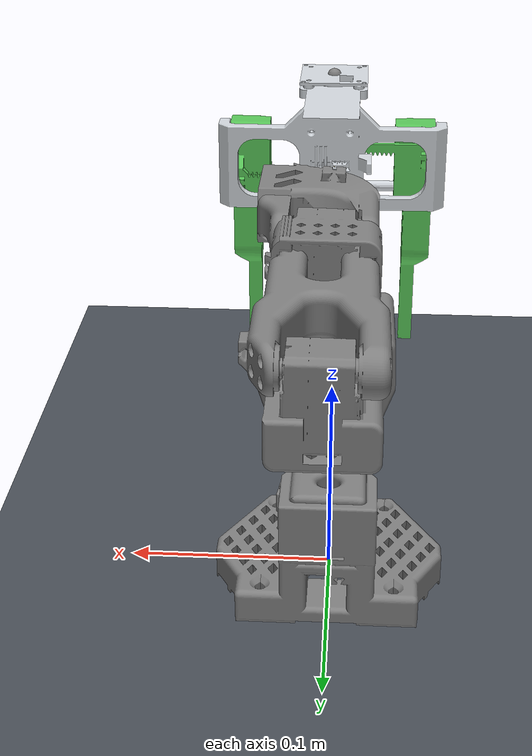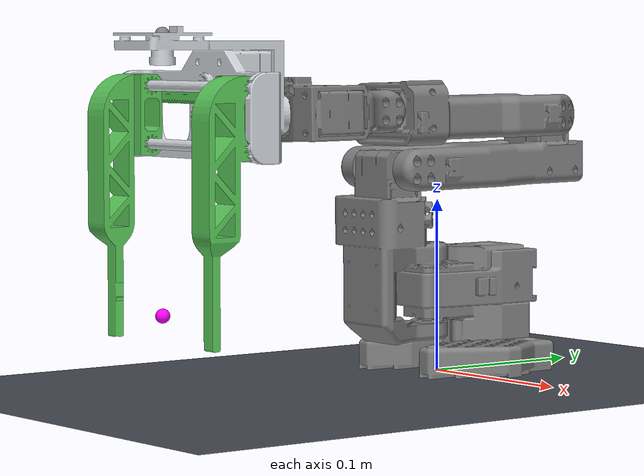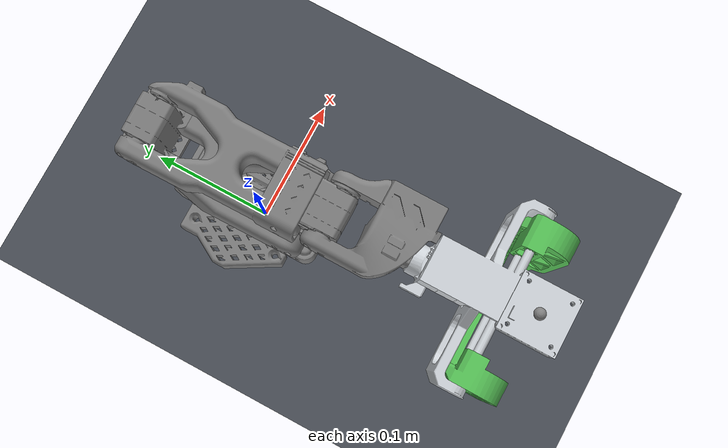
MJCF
<mujoco model="so101_slide_gripper">
  <compiler angle="radian" meshdir="." />
  <option timestep="0.002" integrator="implicitfast" />
  <visual>
    <global offwidth="1600" offheight="1200" />
    <quality shadowsize="4096" />
  </visual>
  <!-- gripper geometry, exported from Fusion -->
  <include file="gripper_assets.xml" />
  <asset>
    <mesh name="base_link" content_type="model/stl" file="meshes/arm/base_link.stl" scale="0.001 0.001 0.001" />
    <mesh name="link1_1" content_type="model/stl" file="meshes/arm/link1_1.stl" scale="0.001 0.001 0.001" />
    <mesh name="link2_1" content_type="model/stl" file="meshes/arm/link2_1.stl" scale="0.001 0.001 0.001" />
    <mesh name="link3_1" content_type="model/stl" file="meshes/arm/link3_1.stl" scale="0.001 0.001 0.001" />
    <mesh name="link4_1" content_type="model/stl" file="meshes/arm/link4_1.stl" scale="0.001 0.001 0.001" />
    <mesh name="link5_1" content_type="model/stl" file="meshes/arm/link5_1.stl" scale="0.001 0.001 0.001" />
    <texture name="grid" type="2d" builtin="checker" rgb1="0.25 0.27 0.30" rgb2="0.32 0.34 0.38" width="512" height="512" />
    <material name="grid" texture="grid" texrepeat="8 8" reflectance="0.1" />
    <texture name="sky" type="skybox" builtin="gradient" rgb1="0.35 0.42 0.52" rgb2="0.05 0.06 0.08" width="256" height="256" />
  </asset>
  <worldbody>
    <light pos="-0.5 -0.3 0.8" dir="0.5 0.3 -0.8" diffuse="0.3 0.3 0.3" />
    <light pos="0.4 -0.5 1.0" dir="-0.4 0.5 -1.0" directional="true" diffuse="0.7 0.7 0.7" />
    <geom name="floor" type="plane" size="1 1 0.01" material="grid" />
    <geom type="mesh" mesh="base_link" />
    <body name="link1_1" pos="-9.9e-05 -0.007243 0.027983">
      <inertial pos="-6.74952e-05 -0.0304904 0.0537666" quat="0.741279 0.0624238 -0.0421672 0.666956" mass="0.241847" diaginertia="0.00020148 0.00019497 9.255e-05" />
      <joint name="base_link_to_link1" pos="0 0 0" axis="0 -0.008727 0.999962" range="-2.0944 2.0944" actuatorfrcrange="-1.5 1.5" damping="0.1" frictionloss="0.05" />
      <geom pos="9.9e-05 0.007243 -0.027983" type="mesh" mesh="link1_1" />
      <body name="link2_1" pos="0.020891 -0.031313 0.091377">
        <inertial pos="-0.0183886 0.0626104 0.00101204" quat="0.487483 0.509946 -0.505248 0.49703" mass="0.986114" diaginertia="0.00163814 0.00133618 0.000430679" />
        <joint name="link1_to_link2" pos="0 0 0" axis="-0.999962 -0.008726 -7.6e-05" range="-3.22886 0.174533" actuatorfrcrange="-1.5 1.5" damping="0.1" frictionloss="0.05" />
        <geom pos="-0.020792 0.038556 -0.11936" quat="1 0 0 0" type="mesh" mesh="link2_1" />
        <body name="link3_1" pos="0.00151 0.112435 0.029417">
          <inertial pos="-0.0177515 -0.0654403 -0.000172961" quat="0.496869 0.499452 -0.493993 0.509548" mass="0.903115" diaginertia="0.0014402 0.00119426 0.000363546" />
          <joint name="link2_to_link3" pos="0 0 0" axis="-0.999924 -0.00865 -0.008802" range="0 3.31613" actuatorfrcrange="-1.5 1.5" damping="0.1" frictionloss="0.05" />
          <geom pos="-0.022302 -0.073879 -0.148777" quat="1 0 0 0" type="mesh" mesh="link3_1" />
          <body name="link4_1" pos="0.00208 -0.134461 0.00412">
            <inertial pos="-0.0143886 -0.0288027 -0.000205619" quat="0.220056 0.668013 -0.224508 0.674485" mass="0.317735" diaginertia="0.000239011 0.000171595 0.000119394" />
            <joint name="link3_to_link4" pos="0 0 0" axis="-0.999848 0.000153 -0.017451" range="-1.65806 1.65806" actuatorfrcrange="-1.5 1.5" damping="0.1" frictionloss="0.05" />
            <geom pos="-0.024382 0.060582 -0.152897" quat="1 0 0 0" type="mesh" mesh="link4_1" />
            <body name="link5_1" pos="-0.01732 -0.060045 -0.000831">
              <inertial pos="0 -0.01 0.005" quat="1 0 0 0" mass="0.08" diaginertia="6e-05 6e-05 4e-05" />
              <joint name="link4_to_link5" pos="0 0 0" axis="-1e-06 0.999961 0.008803" range="-4.27606 1.5708" actuatorfrcrange="-1.5 1.5" damping="0.1" frictionloss="0.05" />
              <body name="sg_mount" pos="-0.0014 -0.0477 -0.0002" quat="0.70710678 0.70710678 0 0">
                <include file="gripper_body.xml" />
              </body>
            </body>
          </body>
        </body>
      </body>
    </body>
  </worldbody>
  <actuator>
    <position name="base_link_to_link1" joint="base_link_to_link1" kp="12" kv="2.0" forcerange="-1.5 1.5" />
    <position name="link1_to_link2" joint="link1_to_link2" kp="18" kv="3.0" forcerange="-1.5 1.5" />
    <position name="link2_to_link3" joint="link2_to_link3" kp="14" kv="2.33" forcerange="-1.5 1.5" />
    <position name="link3_to_link4" joint="link3_to_link4" kp="8" kv="1.33" forcerange="-1.5 1.5" />
    <position name="link4_to_link5" joint="link4_to_link5" kp="6" kv="1.0" forcerange="-1.5 1.5" />
  </actuator>
  <include file="gripper_actuation.xml" />
  <contact>
    <exclude body1="link5_1" body2="slide_gripper_base" />
    <exclude body1="world" body2="link1_1" />
  </contact>
</mujoco>

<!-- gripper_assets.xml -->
<mujocoinclude>
  <asset>
    <mesh name="sg_base"      file="meshes/base.stl"      scale="0.001 0.001 0.001"/>
    <mesh name="sg_jaw_right" file="meshes/jaw_right.stl"  scale="0.001 0.001 0.001"/>
    <mesh name="sg_jaw_left"  file="meshes/jaw_left.stl"   scale="0.001 0.001 0.001"/>
    <mesh name="sg_pinion"    file="meshes/pinion.stl"     scale="0.001 0.001 0.001"/>

    <material name="sg_frame" rgba="0.82 0.84 0.86 1"/>
    <material name="sg_jaw"   rgba="0.35 0.78 0.35 1"/>
    <material name="sg_gear"  rgba="0.90 0.70 0.20 1"/>
    <material name="sg_pad"   rgba="0.90 0.30 0.30 0.35"/>
  </asset>
</mujocoinclude>

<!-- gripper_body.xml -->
<mujocoinclude>
  <body name="slide_gripper_base" pos="0 0 0">
    <geom type="mesh" mesh="sg_base" material="sg_frame" mass="0.20"
          contype="0" conaffinity="0" group="2"/>
    <geom name="sg_base_col" type="box" pos="0 0.012 -0.0023" size="0.064 0.036 0.0498"
          mass="0" group="3" rgba="0.5 0.5 0.5 0.25"/>

    <!-- Drive pinion: 18T, 0.8 module, 7.2 mm pitch radius. Kinematically
         redundant (the racks are coupled directly) but kept so the gear
         visibly turns with the jaws. -->
    <body name="sg_pinion" pos="0 0 0">
      <joint name="sg_pinion_joint" type="hinge" axis="0 0 1" limited="false"
             damping="0.001" armature="1e-4"/>
      <geom type="mesh" mesh="sg_pinion" material="sg_gear" mass="0.008"
            contype="0" conaffinity="0" group="2"/>
    </body>

    <body name="sg_jaw_right" pos="0 0 0">
      <joint name="sg_jaw_right_joint" type="slide" axis="-1 0 0" range="0 0.0355"
             damping="2.0" armature="0.001"/>
      <geom type="mesh" mesh="sg_jaw_right" material="sg_jaw" mass="0.035"
            contype="0" conaffinity="0" group="2"/>
      <geom name="sg_pad_right" type="box" pos="0.046 -0.10719 0.0285"
            size="0.004 0.015 0.0025" mass="0" group="3" material="sg_pad"
            friction="1.5 0.02 0.005" solimp="0.98 0.999 0.001" solref="0.004 1"/>
      <geom name="sg_mid_right" type="box" pos="0.050 -0.05856 0.0285"
            size="0.008 0.0136 0.010" mass="0" group="3" material="sg_pad"
            friction="1.5 0.02 0.005" solimp="0.98 0.999 0.001" solref="0.004 1"/>
    </body>

    <body name="sg_jaw_left" pos="0 0 0">
      <joint name="sg_jaw_left_joint" type="slide" axis="1 0 0" range="0 0.0355"
             damping="2.0" armature="0.001"/>
      <geom type="mesh" mesh="sg_jaw_left" material="sg_jaw" mass="0.035"
            contype="0" conaffinity="0" group="2"/>
      <geom name="sg_pad_left" type="box" pos="-0.046 -0.10719 0.0285"
            size="0.004 0.015 0.0025" mass="0" group="3" material="sg_pad"
            friction="1.5 0.02 0.005" solimp="0.98 0.999 0.001" solref="0.004 1"/>
      <geom name="sg_mid_left" type="box" pos="-0.050 -0.05856 0.0285"
            size="0.008 0.0136 0.010" mass="0" group="3" material="sg_pad"
            friction="1.5 0.02 0.005" solimp="0.98 0.999 0.001" solref="0.004 1"/>
    </body>

    <!-- Arducam OV9281 optical frame, from the camera holder in the CAD -->
    <site name="sg_camera" pos="0 0.044 0.028" quat="0.70710678 0.70710678 0 0" size="0.004"/>
    <site name="sg_tcp"    pos="0 -0.10719 0.0285" size="0.004" rgba="1 0 1 1"/>
  </body>
</mujocoinclude>

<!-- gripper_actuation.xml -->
<mujocoinclude>
  <equality>
    <!-- Both racks mesh with the one pinion, so the jaws mirror exactly. -->
    <joint joint1="sg_jaw_left_joint" joint2="sg_jaw_right_joint" polycoef="0 1 0 0 0"
           solimp="0.99 0.9999 0.001" solref="0.01 1"/>
    <!-- pinion angle = -(rack travel) / 7.2 mm pitch radius.  Sign matches the CAD:
         Drive_Pinion runs 0 -> -4.9306 rad (clockwise looking down +Z) to close. -->
    <joint joint1="sg_pinion_joint" joint2="sg_jaw_right_joint" polycoef="0 -138.889 0 0 0"
           solimp="0.99 0.9999 0.001" solref="0.01 1"/>
  </equality>

  <actuator>
    <!-- One STS3215 drives the pinion; commanded here in jaw-travel metres.
         0 = open (84 mm aperture), 0.0355 = closed (13 mm). -->
    <position name="sg_grip" joint="sg_jaw_right_joint" ctrlrange="0 0.0355"
              kp="800" kv="20" forcerange="-80 80"/>
  </actuator>
</mujocoinclude>
